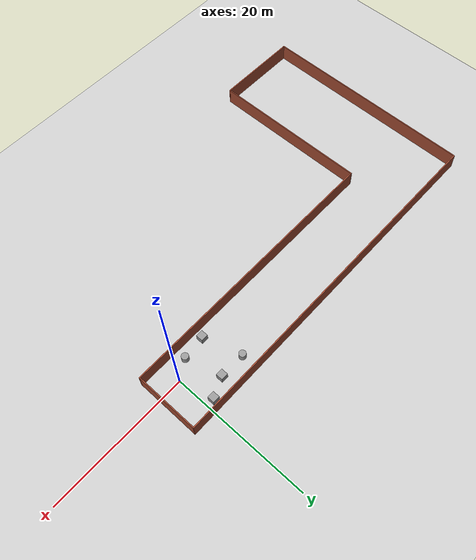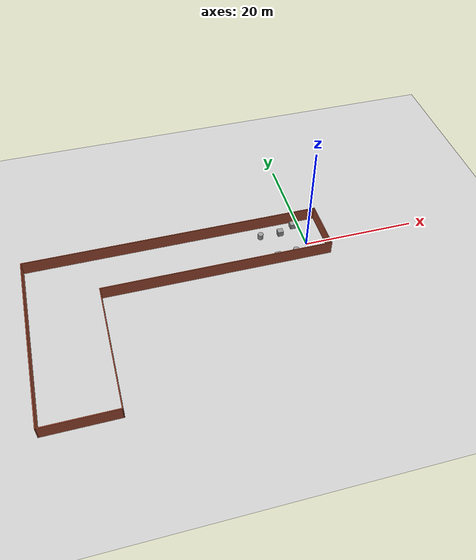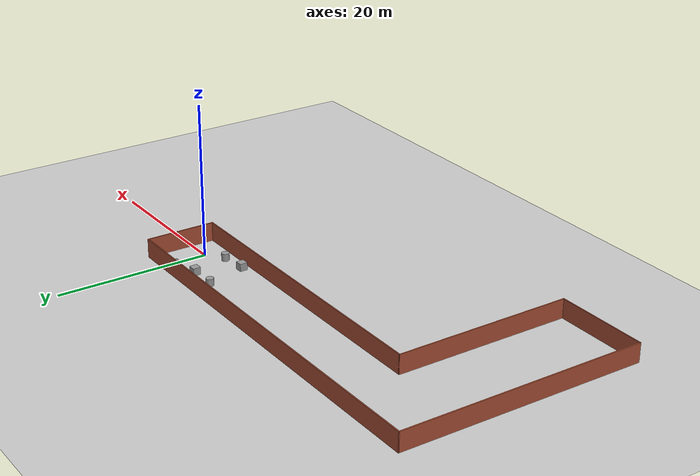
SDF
<sdf version="1.6">
 <world name="default">
  <light name="sun" type="directional">
   <pose>0 0 10 0 -0 0</pose>
   <diffuse>0.8 0.8 0.8 1</diffuse>
   <specular>0.2 0.2 0.2 1</specular>
   <attenuation>
    <range>1000</range>
    <constant>0.9</constant>
    <linear>0.01</linear>
    <quadratic>0.001</quadratic>
   </attenuation>
   <direction>-0.5 0.1 -0.9</direction>
  </light>
  <model name="ground_plane">
   <static>1</static>
   <link name="link">
    <collision name="collision">
     <geometry><plane><normal>0 0 1</normal><size>100 100</size></plane></geometry>
     <surface>
      <contact><collide_bitmask>65535</collide_bitmask></contact>
      <friction><ode><mu>100</mu><mu2>50</mu2></ode></friction>
     </surface>
    </collision>
    <visual name="visual">
     <cast_shadows>0</cast_shadows>
     <geometry><plane><normal>0 0 1</normal><size>100 100</size></plane></geometry>
     <material>
      <script><uri>file://media/materials/scripts/gazebo.material</uri><name>Gazebo/Grey</name></script>
     </material>
    </visual>
   </link>
  </model>
  <gravity>0 0 -9.8</gravity>
  <magnetic_field>6e-06 2.3e-05 -4.2e-05</magnetic_field>
  <atmosphere type="adiabatic"/>
  <physics name="default_physics" default="0" type="ode">
   <max_step_size>0.001</max_step_size>
   <real_time_factor>1</real_time_factor>
   <real_time_update_rate>1000</real_time_update_rate>
  </physics>
  <scene><ambient>0.4 0.4 0.4 1</ambient><background>0.7 0.7 0.7 1</background><shadows>1</shadows></scene>
  <spherical_coordinates>
   <surface_model>EARTH_WGS84</surface_model>
   <latitude_deg>0</latitude_deg>
   <longitude_deg>0</longitude_deg>
   <elevation>0</elevation>
   <heading_deg>0</heading_deg>
  </spherical_coordinates>
  <model name="hanhlang">
   <pose>-23.0559 -10.2028 0 0 -0 0</pose>
   <link name="Wall_1">
    <collision name="Wall_1_Collision">
     <geometry><box><size>9.25 0.15 2.5</size></box></geometry>
     <pose>0 0 1.25 0 -0 0</pose>
    </collision>
    <visual name="Wall_1_Visual">
     <pose>0 0 1.25 0 -0 0</pose>
     <geometry><box><size>9.25 0.15 2.5</size></box></geometry>
     <material>
      <script><uri>file://media/materials/scripts/gazebo.material</uri><name>Gazebo/Bricks</name></script>
      <ambient>1 1 1 1</ambient>
     </material>
     <meta><layer>0</layer></meta>
    </visual>
    <pose>26.4323 11.6741 0 0 -0 1.5708</pose>
   </link>
   <link name="Wall_5">
    <collision name="Wall_5_Collision">
     <geometry><box><size>53.0164 0.15 2.5</size></box></geometry>
     <pose>0 0 1.25 0 -0 0</pose>
    </collision>
    <visual name="Wall_5_Visual">
     <pose>0 0 1.25 0 -0 0</pose>
     <geometry><box><size>53.0164 0.15 2.5</size></box></geometry>
     <material>
      <script><uri>file://media/materials/scripts/gazebo.material</uri><name>Gazebo/Bricks</name></script>
      <ambient>1 1 1 1</ambient>
     </material>
     <meta><layer>0</layer></meta>
    </visual>
    <pose>-0.000902 16.1751 0 0 -0 -3.13961</pose>
   </link>
   <link name="Wall_6">
    <collision name="Wall_6_Collision">
     <geometry><box><size>32.5 0.15 2.5</size></box></geometry>
     <pose>0 0 1.25 0 -0 0</pose>
    </collision>
    <visual name="Wall_6_Visual">
     <pose>0 0 1.25 0 -0 0</pose>
     <geometry><box><size>32.5 0.15 2.5</size></box></geometry>
     <material>
      <script><uri>file://media/materials/scripts/gazebo.material</uri><name>Gazebo/Bricks</name></script>
      <ambient>1 1 1 1</ambient>
     </material>
     <meta><layer>0</layer></meta>
    </visual>
    <pose>-26.4341 -0.052243 0 0 -0 -1.5708</pose>
   </link>
   <link name="Wall_7">
    <collision name="Wall_7_Collision">
     <geometry><box><size>12.5 0.15 2.5</size></box></geometry>
     <pose>0 0 1.25 0 -0 0</pose>
    </collision>
    <visual name="Wall_7_Visual">
     <pose>0 0 1.25 0 -0 0</pose>
     <geometry><box><size>12.5 0.15 2.5</size></box></geometry>
     <material>
      <script><uri>file://media/materials/scripts/gazebo.material</uri><name>Gazebo/Bricks</name></script>
      <ambient>1 1 1 1</ambient>
     </material>
     <meta><layer>0</layer></meta>
    </visual>
    <pose>-20.2591 -16.2272 0 0 -0 0</pose>
   </link>
   <link name="Wall_8">
    <collision name="Wall_8_Collision">
     <geometry><box><size>23.4969 0.15 2.5</size></box></geometry>
     <pose>0 0 1.25 0 -0 0</pose>
    </collision>
    <visual name="Wall_8_Visual">
     <pose>0 0 1.25 0 -0 0</pose>
     <geometry><box><size>23.4969 0.15 2.5</size></box></geometry>
     <material>
      <script><uri>file://media/materials/scripts/gazebo.material</uri><name>Gazebo/Bricks</name></script>
      <ambient>1 1 1 1</ambient>
     </material>
     <meta><layer>0</layer></meta>
    </visual>
    <pose>-14.1266 -4.55388 0 0 -0 1.57444</pose>
   </link>
   <link name="Wall_9">
    <collision name="Wall_9_Collision">
     <geometry><box><size>40.75 0.15 2.5</size></box></geometry>
     <pose>0 0 1.25 0 -0 0</pose>
    </collision>
    <visual name="Wall_9_Visual">
     <pose>0 0 1.25 0 -0 0</pose>
     <geometry><box><size>40.75 0.15 2.5</size></box></geometry>
     <material>
      <script><uri>file://media/materials/scripts/gazebo.material</uri><name>Gazebo/Bricks</name></script>
      <ambient>1 1 1 1</ambient>
     </material>
     <meta><layer>0</layer></meta>
    </visual>
    <pose>6.1342 7.11949 0 0 -0 0</pose>
   </link>
   <static>1</static>
  </model>
  <model name="unit_box">
   <pose>-1.13804 4.74435 0.499995 0 -1e-05 0</pose>
   <link name="link">
    <inertial>
     <mass>1</mass>
     <inertia>
      <ixx>0.166667</ixx>
      <ixy>0</ixy>
      <ixz>0</ixz>
      <iyy>0.166667</iyy>
      <iyz>0</iyz>
      <izz>0.166667</izz>
     </inertia>
    </inertial>
    <collision name="collision"><geometry><box><size>1 1 1</size></box></geometry></collision>
    <visual name="visual">
     <geometry><box><size>1 1 1</size></box></geometry>
     <material>
      <script><name>Gazebo/Grey</name><uri>file://media/materials/scripts/gazebo.material</uri></script>
     </material>
    </visual>
   </link>
  </model>
  <model name="unit_box_0">
   <pose>-3.89145 3.51032 0.499995 0 -1e-05 0</pose>
   <link name="link">
    <inertial>
     <mass>1</mass>
     <inertia>
      <ixx>0.166667</ixx>
      <ixy>0</ixy>
      <ixz>0</ixz>
      <iyy>0.166667</iyy>
      <iyz>0</iyz>
      <izz>0.166667</izz>
     </inertia>
    </inertial>
    <collision name="collision"><geometry><box><size>1 1 1</size></box></geometry></collision>
    <visual name="visual">
     <geometry><box><size>1 1 1</size></box></geometry>
     <material>
      <script><name>Gazebo/Grey</name><uri>file://media/materials/scripts/gazebo.material</uri></script>
     </material>
    </visual>
   </link>
  </model>
  <model name="unit_cylinder">
   <pose>-2.53096 -1.54513 0.499992 -3e-06 4e-06 0</pose>
   <link name="link">
    <inertial>
     <mass>1</mass>
     <inertia><ixx>0.145833</ixx><ixy>0</ixy><ixz>0</ixz><iyy>0.145833</iyy><iyz>0</iyz><izz>0.125</izz></inertia>
    </inertial>
    <collision name="collision">
     <geometry><cylinder><radius>0.5</radius><length>1</length></cylinder></geometry>
    </collision>
    <visual name="visual">
     <geometry><cylinder><radius>0.5</radius><length>1</length></cylinder></geometry>
     <material>
      <script><name>Gazebo/Grey</name><uri>file://media/materials/scripts/gazebo.material</uri></script>
     </material>
    </visual>
   </link>
  </model>
  <model name="unit_cylinder_0">
   <pose>-7.56711 3.52219 0.499998 3e-06 -4e-06 0</pose>
   <link name="link">
    <inertial>
     <mass>1</mass>
     <inertia><ixx>0.145833</ixx><ixy>0</ixy><ixz>0</ixz><iyy>0.145833</iyy><iyz>0</iyz><izz>0.125</izz></inertia>
    </inertial>
    <collision name="collision">
     <geometry><cylinder><radius>0.5</radius><length>1</length></cylinder></geometry>
    </collision>
    <visual name="visual">
     <geometry><cylinder><radius>0.5</radius><length>1</length></cylinder></geometry>
     <material>
      <script><name>Gazebo/Grey</name><uri>file://media/materials/scripts/gazebo.material</uri></script>
     </material>
    </visual>
   </link>
  </model>
  <model name="unit_box_1">
   <pose>-5.93153 -1.91085 0.499995 -1e-05 0 0</pose>
   <link name="link">
    <inertial>
     <mass>1</mass>
     <inertia>
      <ixx>0.166667</ixx>
      <ixy>0</ixy>
      <ixz>0</ixz>
      <iyy>0.166667</iyy>
      <iyz>0</iyz>
      <izz>0.166667</izz>
     </inertia>
    </inertial>
    <collision name="collision"><geometry><box><size>1 1 1</size></box></geometry></collision>
    <visual name="visual">
     <geometry><box><size>1 1 1</size></box></geometry>
     <material>
      <script><name>Gazebo/Grey</name><uri>file://media/materials/scripts/gazebo.material</uri></script>
     </material>
    </visual>
   </link>
  </model>
 </world>
</sdf>
